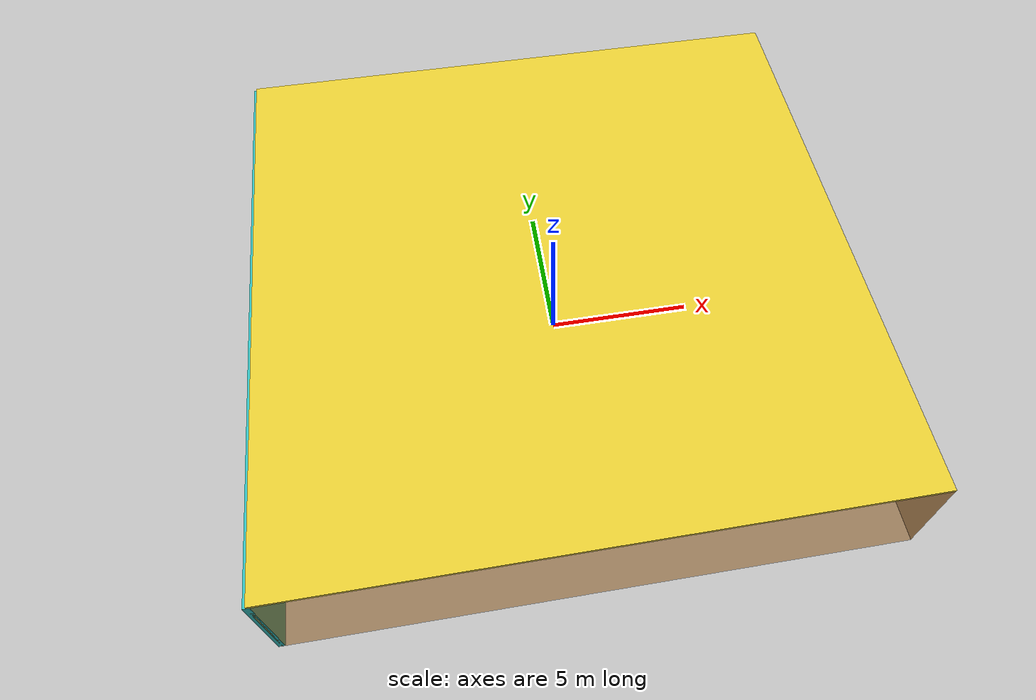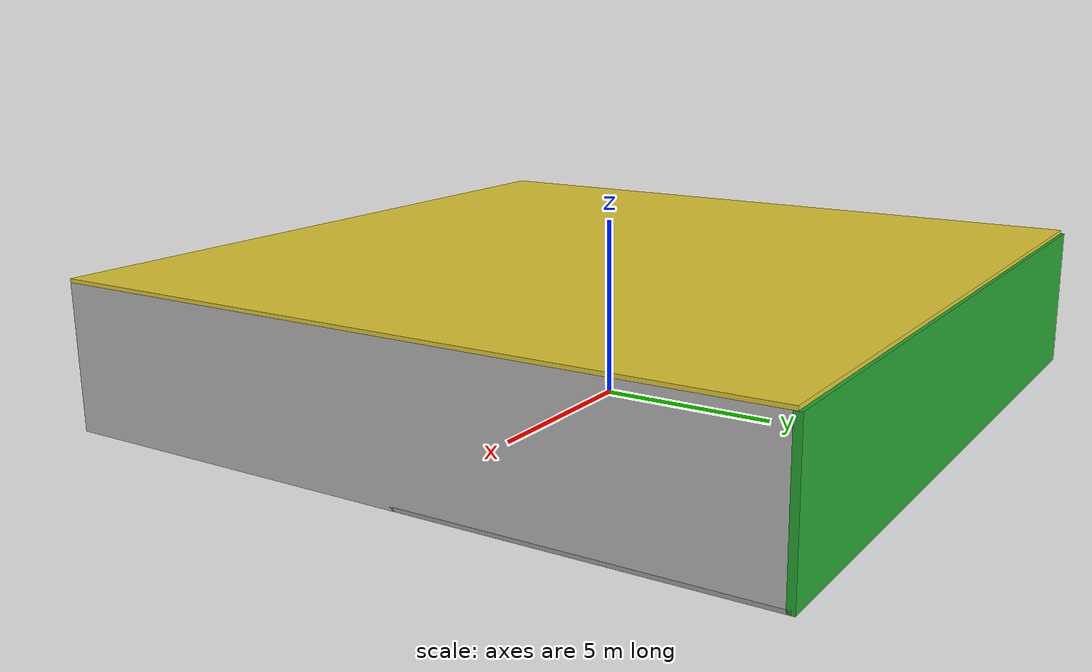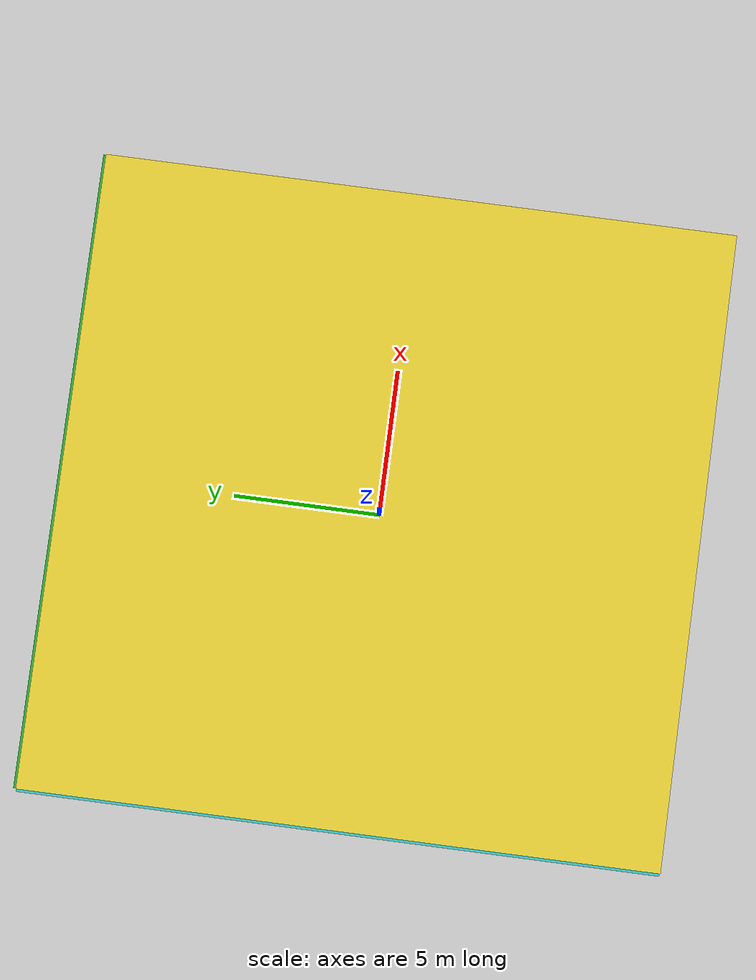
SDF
<sdf version="1.4">
 <world name="default">
  <physics type="ode">
   <max_step_size>0.001</max_step_size>
   <real_time_factor>1</real_time_factor>
   <real_time_update_rate>1000</real_time_update_rate>
   <gravity>0 0 -9.8</gravity>
  </physics>
  <scene><ambient>0.4 0.4 0.4 1</ambient><background>0.7 0.7 0.7 1</background><shadows>1</shadows></scene>
  <model name="Surrounding">
   <static>1</static>
   <link name="Ceiling">
    <collision name="Ceiling_Collision"><geometry><box><size>20 20 0.1</size></box></geometry></collision>
    <visual name="Ceiling_Visual">
     <geometry><box><size>20 20 0.1</size></box></geometry>
     <material>
      <script><uri>file://media/materials/scripts/gazebo.material</uri><name>Gazebo/ZincYellow</name></script>
     </material>
    </visual>
    <pose>0 0 4.05 0 0 0</pose>
   </link>
   <link name="Wall_South">
    <collision name="Wall_South_Collision">
     <geometry><box><size>20 0 4</size></box></geometry>
     <pose>0 0 2 0 -0 0</pose>
    </collision>
    <visual name="Wall_South_Visual">
     <pose>0 0 2 0 -0 0</pose>
     <geometry><box><size>20 0 4</size></box></geometry>
     <material>
      <script>
       <uri>file://media/materials/scripts/gazebo.material</uri>
       <name>Gazebo/OrangeTransparent</name>
      </script>
     </material>
    </visual>
    <velocity_decay><linear>0</linear><angular>0</angular></velocity_decay>
    <pose>0 -10 0 0 -0 0</pose>
   </link>
   <link name="Wall_East">
    <collision name="Wall_21_Collision">
     <geometry><box><size>20 0 4</size></box></geometry>
     <pose>0 0 2 0 -0 0</pose>
    </collision>
    <visual name="Wall_21_Visual">
     <pose>0 0 2 0 -0 0</pose>
     <geometry><box><size>20 0 4</size></box></geometry>
     <material>
      <script><uri>file://media/materials/scripts/gazebo.material</uri><name>Gazebo/LightOn</name></script>
     </material>
    </visual>
    <velocity_decay><linear>0</linear><angular>0</angular></velocity_decay>
    <pose>10 0 0 0 -0 1.5708</pose>
   </link>
   <link name="Wall_North">
    <collision name="Wall_22_Collision">
     <geometry><box><size>20 0.2 4</size></box></geometry>
     <pose>0 0 2 0 -0 0</pose>
    </collision>
    <visual name="Wall_22_Visual">
     <pose>0 0 2 0 -0 0</pose>
     <geometry><box><size>20 0.2 4</size></box></geometry>
     <material>
      <script><uri>file://media/materials/scripts/gazebo.material</uri><name>Gazebo/GreenGlow</name></script>
     </material>
    </visual>
    <velocity_decay><linear>0</linear><angular>0</angular></velocity_decay>
    <pose>0 10 0 0 -0 0</pose>
   </link>
   <link name="Wall_West">
    <collision name="Wall_23_Collision">
     <geometry><box><size>20 0.2 4</size></box></geometry>
     <pose>0 0 2 0 -0 0</pose>
    </collision>
    <visual name="Wall_23_Visual">
     <pose>0 0 2 0 -0 0</pose>
     <geometry><box><size>20 0.2 4</size></box></geometry>
     <material>
      <script><uri>file://media/materials/scripts/gazebo.material</uri><name>Gazebo/Turquoise</name></script>
     </material>
    </visual>
    <velocity_decay><linear>0</linear><angular>0</angular></velocity_decay>
    <pose>-10 0 0 0 0 -1.5708</pose>
   </link>
   <link name="Ground_link">
    <collision name="collision">
     <pose>0 0 .05 0 -0 0</pose>
     <geometry><box><size>20 20 0.1</size></box></geometry>
    </collision>
    <visual name="visual">
     <pose>0 0 .05 0 -0 0</pose>
     <geometry><box><size>20 20 0.1</size></box></geometry>
     <material>
      <script><uri>file://media/materials/scripts/gazebo.material</uri><name>Gazebo/GreyTransparent</name></script>
     </material>
    </visual>
   </link>
   <static>1</static>
  </model>
  <spherical_coordinates>
   <surface_model>EARTH_WGS84</surface_model>
   <latitude_deg>0</latitude_deg>
   <longitude_deg>0</longitude_deg>
   <elevation>0</elevation>
   <heading_deg>0</heading_deg>
  </spherical_coordinates>
  <light name="lightball_0" type="diffuse">
   <diffuse>0.8 0.8 0.8 1</diffuse>
   <specular>0.2 0.2 0.2 1</specular>
   <attenuation>
    <range>100</range>
    <constant>0.7</constant>
    <linear>0.01</linear>
    <quadratic>0.001</quadratic>
   </attenuation>
   <direction>-0.5 0.1 -0.9</direction>
   <pose>5.31646682086 -0.211718208829 0.806410442271 0 0 0</pose>
  </light>
  <light name="lightball_1" type="diffuse">
   <diffuse>0.8 0.8 0.8 1</diffuse>
   <specular>0.2 0.2 0.2 1</specular>
   <attenuation>
    <range>100</range>
    <constant>0.7</constant>
    <linear>0.01</linear>
    <quadratic>0.001</quadratic>
   </attenuation>
   <direction>-0.5 0.1 -0.9</direction>
   <pose>3.80489539019 1.97655886001 3.06566463746 0 0 0</pose>
  </light>
  <light name="lightball_2" type="diffuse">
   <diffuse>0.8 0.8 0.8 1</diffuse>
   <specular>0.2 0.2 0.2 1</specular>
   <attenuation>
    <range>100</range>
    <constant>0.7</constant>
    <linear>0.01</linear>
    <quadratic>0.001</quadratic>
   </attenuation>
   <direction>-0.5 0.1 -0.9</direction>
   <pose>6.71408577632 -5.24265794087 2.10161721308 0 0 0</pose>
  </light>
  <light name="lightball_3" type="diffuse">
   <diffuse>0.8 0.8 0.8 1</diffuse>
   <specular>0.2 0.2 0.2 1</specular>
   <attenuation>
    <range>100</range>
    <constant>0.7</constant>
    <linear>0.01</linear>
    <quadratic>0.001</quadratic>
   </attenuation>
   <direction>-0.5 0.1 -0.9</direction>
   <pose>-0.394956058164 6.80290340561 2.73299584029 0 0 0</pose>
  </light>
  <include><uri>model://cabinet</uri><pose>-7.81396065385 -1.69636666313 0 0 0 0.867542964638</pose></include>
  <include><uri>model://cabinet</uri><pose>-3.67950074475 -4.31632396975 0 0 0 0.400945778328</pose></include>
  <include><uri>model://cabinet</uri><pose>6.3668110658 1.18748402649 0 0 0 2.61747639554</pose></include>
 </world>
</sdf>

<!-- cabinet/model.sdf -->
<sdf version="1.5">
  <model name="cabinet">
    <static>true</static>
    <link name="cabinet_bottom_plate">
      <inertial>
        <pose>0 0 -1 0 0 0</pose>
        <inertia>
          <ixx>2.050000</ixx>
          <ixy>0</ixy>
          <ixz>0</ixz>
          <iyy>2.050000</iyy>
          <iyz>0</iyz>
          <izz>2.050000</izz>
        </inertia>
        <mass>25.000000</mass>
      </inertial>
      <collision name="cabinet_bottom_plate_geom">
        <pose>0 0 0.010000 0 0 0</pose>
        <geometry>
          <box>
            <size>0.450000 0.450000 0.020000</size>
          </box>
        </geometry>
      </collision>
      <visual name="cabinet_bottom_plate_geom_visual">
        <pose>0 0 0.010000 0 0 0</pose>
        <geometry>
          <box>
            <size>0.450000 0.450000 0.020000</size>
          </box>
        </geometry>
        <material>
          <script>
            <uri>model://media/materials/scripts/gazebo.material</uri>
            <name>Gazebo/Wood</name>
          </script>
        </material>
      </visual>
      <collision name="cabinet_bottom_plate_geom_cabinet_back_plate">
        <pose>0.235000 0 0.510000 0 0 0</pose>
        <geometry>
          <box>
            <size>0.020000 0.450000 1.020000</size>
          </box>
        </geometry>
      </collision>
      <visual name="cabinet_bottom_plate_geom_cabinet_back_plate_visual">
        <pose>0.235000 0 0.510000 0 0 0</pose>
        <geometry>
          <box>
            <size>0.020000 0.450000 1.020000</size>
          </box>
        </geometry>
        <material>
          <script>
            <uri>model://media/materials/scripts/gazebo.material</uri>
            <name>Gazebo/Wood</name>
          </script>
        </material>
      </visual>
      <collision name="cabinet_bottom_plate_geom_cabinet_left_plate">
        <pose>0 0.235000 0.510000 0 0 0</pose>
        <geometry>
          <box>
            <size>0.450000 0.020000 1.020000</size>
          </box>
        </geometry>
      </collision>
      <visual name="cabinet_bottom_plate_geom_cabinet_left_plate_visual">
        <pose>0 0.235000 0.510000 0 0 0</pose>
        <geometry>
          <box>
            <size>0.450000 0.020000 1.020000</size>
          </box>
        </geometry>
        <material>
          <script>
            <uri>model://media/materials/scripts/gazebo.material</uri>
            <name>Gazebo/Wood</name>
          </script>
        </material>
      </visual>
      <collision name="cabinet_bottom_plate_geom_cabinet_middle_plate">
        <pose>0 0 0.510000 0 0 0</pose>
        <geometry>
          <box>
            <size>0.450000 0.450000 0.020000</size>
          </box>
        </geometry>
      </collision>
      <visual name="cabinet_bottom_plate_geom_cabinet_middle_plate_visual">
        <pose>0 0 0.510000 0 0 0</pose>
        <geometry>
          <box>
            <size>0.450000 0.450000 0.020000</size>
          </box>
        </geometry>
        <material>
          <script>
            <uri>model://media/materials/scripts/gazebo.material</uri>
            <name>Gazebo/Wood</name>
          </script>
        </material>
      </visual>
      <collision name="cabinet_bottom_plate_geom_cabinet_right_plate">
        <pose>0 -0.235000 0.510000 0 0 0</pose>
        <geometry>
          <box>
            <size>0.450000 0.020000 1.020000</size>
          </box>
        </geometry>
      </collision>
      <visual name="cabinet_bottom_plate_geom_cabinet_right_plate_visual">
        <pose>0 -0.235000 0.510000 0 0 0</pose>
        <geometry>
          <box>
            <size>0.450000 0.020000 1.020000</size>
          </box>
        </geometry>
        <material>
          <script>
            <uri>model://media/materials/scripts/gazebo.material</uri>
            <name>Gazebo/Wood</name>
          </script>
        </material>
      </visual>
      <collision name="cabinet_bottom_plate_geom_cabinet_top_plate">
        <pose>0 0 1.010000 0 0 0</pose>
        <geometry>
          <box>
            <size>0.450000 0.450000 0.020000</size>
          </box>
        </geometry>
      </collision>
      <visual name="cabinet_bottom_plate_geom_cabinet_top_plate_visual">
        <pose>0 0 1.010000 0 0 0</pose>
        <geometry>
          <box>
            <size>0.450000 0.450000 0.020000</size>
          </box>
        </geometry>
        <material>
          <script>
            <uri>model://media/materials/scripts/gazebo.material</uri>
            <name>Gazebo/Wood</name>
          </script>
        </material>
      </visual>
    </link>
  </model>
</sdf>
